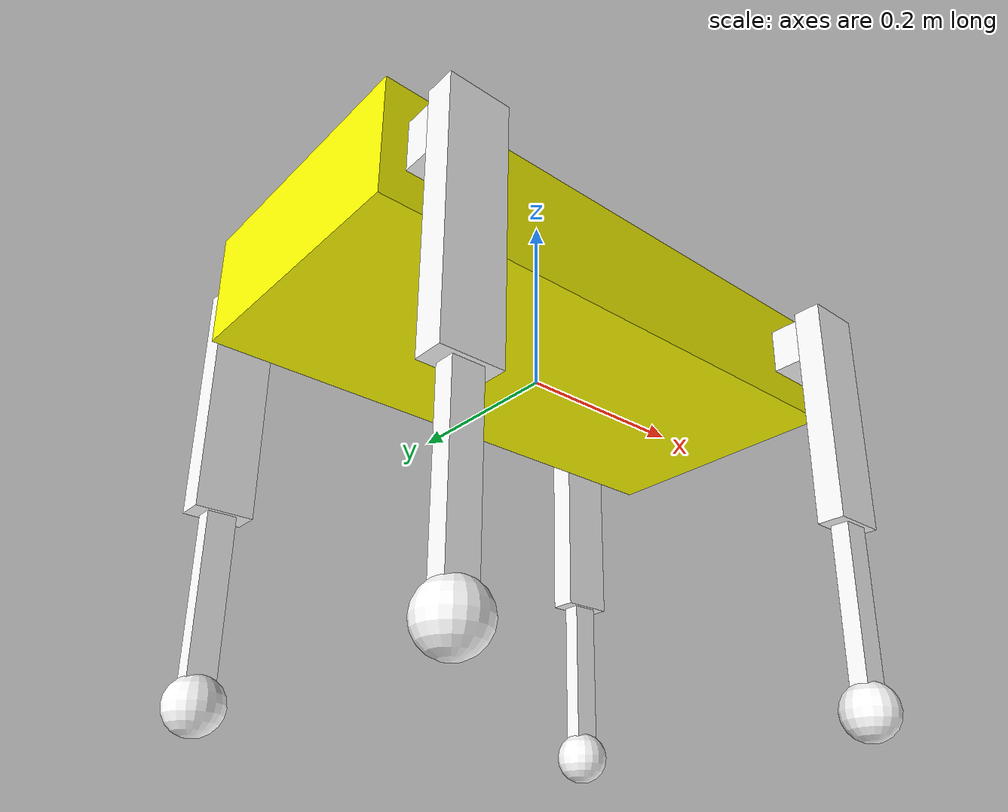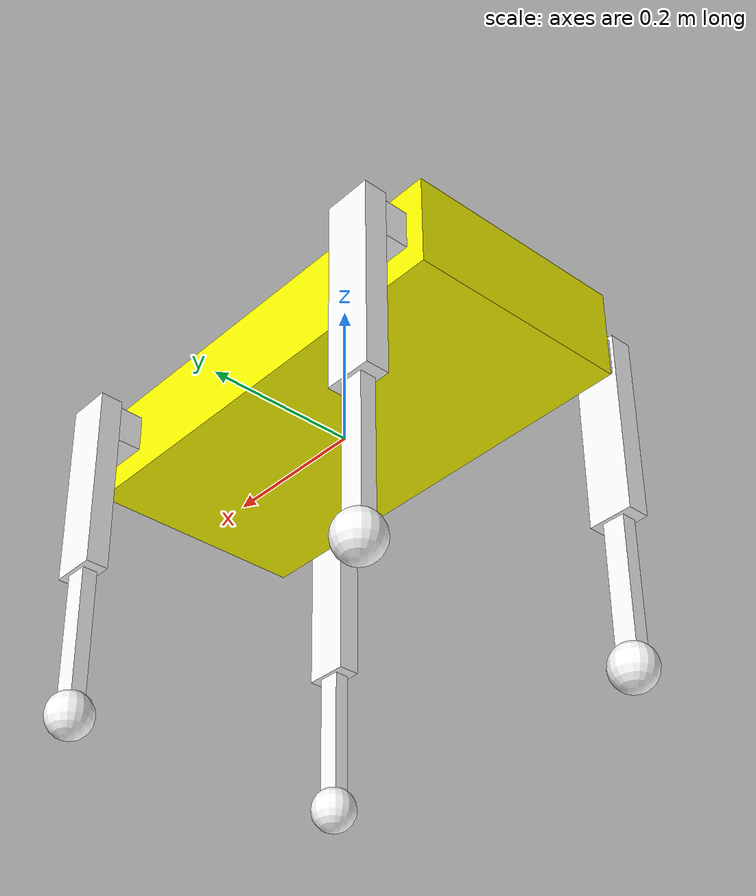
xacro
<?xml version="1.0" ?>
<robot name="legbot" xmlns:xacro="http://www.ros.org/wiki/xacro">
  <!-- include xacro files -->
  <xacro:include filename="$(find legbot_description)/urdf/legbot.gazebo.xacro"/>
  <xacro:include filename="$(find legbot_description)/urdf/legbot.ros2_control.xacro"/>
  <xacro:include filename="$(find legbot_description)/urdf/body/body.urdf.xacro"/>
  <xacro:include filename="$(find legbot_description)/urdf/leg/hip.urdf.xacro"/>
  <xacro:include filename="$(find legbot_description)/urdf/leg/upper_leg.urdf.xacro"/>
  <xacro:include filename="$(find legbot_description)/urdf/leg/lower_leg.urdf.xacro"/>
  <xacro:include filename="$(find legbot_description)/urdf/leg/foot.urdf.xacro"/>
  <xacro:include filename="$(find legbot_description)/urdf/sensors/lidar.urdf.xacro"/>

  <!-- arg -->
  <xacro:arg name="use_ignition" default="true"/>

  <!-- property -->
  <xacro:property name="use_ignition" value="$(arg use_ignition)"/>
  <xacro:property name="body_depth" value="0.6"/>
  <xacro:property name="body_width" value="0.3"/>
  <xacro:property name="body_height" value="0.12"/>
  <xacro:property name="body_mass" value="1"/>
  <xacro:property name="hip_depth" value="0.05"/>
  <xacro:property name="hip_width" value="0.1"/>
  <xacro:property name="hip_height" value="0.05"/>
  <xacro:property name="hip_mass" value="0.2"/>
  <xacro:property name="hip_shift_x" value="0.25"/>
  <xacro:property name="hip_shift_y" value="0.1"/>
  <xacro:property name="upper_leg_width" value="0.06"/>
  <xacro:property name="upper_leg_length" value="0.25"/>
  <xacro:property name="upper_leg_depth" value="0.03"/>
  <xacro:property name="upper_leg_mass" value="0.2"/>
  <xacro:property name="lower_leg_width" value="0.03"/>
  <xacro:property name="lower_leg_length" value="0.25"/>
  <xacro:property name="lower_leg_depth" value="0.02"/>
  <xacro:property name="lower_leg_mass" value="0.2"/>
  <xacro:property name="foot_radius" value="0.03"/>
  <xacro:property name="foot_mass" value="0.1"/>
  <xacro:property name="lidar_radius" value="0.04"/>
  <xacro:property name="lidar_length" value="0.04"/>
  <xacro:property name="lidar_mass" value="0.015"/>

  <!-- ======== Body Description ======== -->
  <xacro:body name="base_link" depth="${body_depth}" width="${body_width}" height="${body_height}" mass="${body_mass}"/>

  <!-- ======== Leg Description ======== -->
  <xacro:hip name="lf" parent="base_link"
             depth="${hip_depth}" width="${hip_width}" height="${hip_height}"
             mass="${hip_mass}" side="1" use_ignition="${use_ignition}">
    <origin xyz="${hip_shift_x} ${hip_shift_y} ${body_height/2}" rpy="0 0 0"/>
  </xacro:hip>
  <xacro:hip name="rf" parent="base_link"
             depth="${hip_depth}" width="${hip_width}" height="${hip_height}"
             mass="${hip_mass}" side="-1" use_ignition="${use_ignition}">
    <origin xyz="${hip_shift_x} ${-hip_shift_y} ${body_height/2}" rpy="0 0 0"/>
  </xacro:hip>
  <xacro:hip name="lb" parent="base_link"
             depth="${hip_depth}" width="${hip_width}" height="${hip_height}"
             mass="${hip_mass}" side="1" use_ignition="${use_ignition}">
    <origin xyz="${-hip_shift_x} ${hip_shift_y} ${body_height/2}" rpy="0 0 0"/>
  </xacro:hip>
  <xacro:hip name="rb" parent="base_link"
             depth="${hip_depth}" width="${hip_width}" height="${hip_height}"
             mass="${hip_mass}" side="-1" use_ignition="${use_ignition}">
    <origin xyz="${-hip_shift_x} ${-hip_shift_y} ${body_height/2}" rpy="0 0 0"/>
  </xacro:hip>

  <xacro:upper_leg name="lf"
                   width="${upper_leg_width}" length="${upper_leg_length}"
                   depth="${upper_leg_depth}" shift="${(upper_leg_width-upper_leg_length)/2}"
                   mass="${upper_leg_mass}" use_ignition="${use_ignition}">
    <origin xyz="0 ${hip_width} 0" rpy="0 0 0"/>
  </xacro:upper_leg>
  <xacro:upper_leg name="rf"
                   width="${upper_leg_width}" length="${upper_leg_length}"
                   depth="${upper_leg_depth}" shift="${(upper_leg_width-upper_leg_length)/2}"
                   mass="${upper_leg_mass}" use_ignition="${use_ignition}">
    <origin xyz="0 ${-hip_width} 0" rpy="0 0 0"/>
  </xacro:upper_leg>
  <xacro:upper_leg name="lb"
                   width="${upper_leg_width}" length="${upper_leg_length}"
                   depth="${upper_leg_depth}" shift="${(upper_leg_width-upper_leg_length)/2}"
                   mass="${upper_leg_mass}" use_ignition="${use_ignition}">
    <origin xyz="0 ${hip_width} 0" rpy="0 0 0"/>
  </xacro:upper_leg>
  <xacro:upper_leg name="rb"
                   width="${upper_leg_width}" length="${upper_leg_length}"
                   depth="${upper_leg_depth}" shift="${(upper_leg_width-upper_leg_length)/2}"
                   mass="${upper_leg_mass}" use_ignition="${use_ignition}">
    <origin xyz="0 ${-hip_width} 0" rpy="0 0 0"/>
  </xacro:upper_leg>

  <xacro:lower_leg name="lf"
                   width="${lower_leg_width}" length="${lower_leg_length}"
                   depth="${lower_leg_depth}" shift="${(lower_leg_width-lower_leg_length)/2}"
                   mass="${lower_leg_mass}" use_ignition="${use_ignition}">
    <origin xyz="0 0 ${upper_leg_width-upper_leg_length}" rpy="0 0 0"/>
  </xacro:lower_leg>
  <xacro:lower_leg name="rf"
                   width="${lower_leg_width}" length="${lower_leg_length}"
                   depth="${lower_leg_depth}" shift="${(lower_leg_width-lower_leg_length)/2}"
                   mass="${lower_leg_mass}" use_ignition="${use_ignition}">
    <origin xyz="0 0 ${upper_leg_width-upper_leg_length}" rpy="0 0 0"/>
  </xacro:lower_leg>
  <xacro:lower_leg name="lb"
                   width="${lower_leg_width}" length="${lower_leg_length}"
                   depth="${lower_leg_depth}" shift="${(lower_leg_width-lower_leg_length)/2}"
                   mass="${lower_leg_mass}" use_ignition="${use_ignition}">
    <origin xyz="0 0 ${upper_leg_width-upper_leg_length}" rpy="0 0 0"/>
  </xacro:lower_leg>
  <xacro:lower_leg name="rb"
                   width="${lower_leg_width}" length="${lower_leg_length}"
                   depth="${lower_leg_depth}" shift="${(lower_leg_width-lower_leg_length)/2}"
                   mass="${lower_leg_mass}" use_ignition="${use_ignition}">
    <origin xyz="0 0 ${upper_leg_width-upper_leg_length}" rpy="0 0 0"/>
  </xacro:lower_leg>

  <xacro:foot name="lf" radius="${foot_radius}" mass="${foot_mass}">
    <origin xyz="0 0 ${lower_leg_width-lower_leg_length}" rpy="0 0 0"/>
  </xacro:foot>
  <xacro:foot name="rf" radius="${foot_radius}" mass="${foot_mass}">
    <origin xyz="0 0 ${lower_leg_width-lower_leg_length}" rpy="0 0 0"/>
  </xacro:foot>
  <xacro:foot name="lb" radius="${foot_radius}" mass="${foot_mass}">
    <origin xyz="0 0 ${lower_leg_width-lower_leg_length}" rpy="0 0 0"/>
  </xacro:foot>
  <xacro:foot name="rb" radius="${foot_radius}" mass="${foot_mass}">
    <origin xyz="0 0 ${lower_leg_width-lower_leg_length}" rpy="0 0 0"/>
  </xacro:foot>

  <!-- ======== Sensors Description ======== -->
  <xacro:lidar name="laser" parent="base_link" radius="${lidar_radius}"
               length="${lidar_length}" mass="${lidar_mass}" use_ignition="${use_ignition}">
    <origin xyz="0 0 ${body_height+lidar_length/2}" rpy="0 0 0"/>
  </xacro:lidar>

  <!-- ======== Gazebo ======== -->
  <xacro:if value="${use_ignition}">
    <xacro:legbot_gazebo />
  </xacro:if>

  <!-- ======== ros2_control ======== -->
  <xacro:legbot_ros2_control use_ignition="${use_ignition}"/>
</robot>

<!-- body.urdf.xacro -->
<robot name="body" xmlns:xacro="http://www.ros.org/wiki/xacro">
  <xacro:include filename="$(find legbot_description)/urdf/color.urdf.xacro"/>

  <xacro:macro name="body" params="name depth width height mass">

    <link name="${name}">
      <inertial>
        <origin xyz="0 0 ${height/2}" rpy="0 0 0"/>
        <mass value="${mass}" />
        <inertia ixx="${mass/12*(width*width+height*height)}" ixy="0" ixz="0"
                 iyx="0" iyy="${mass/12*(depth*depth+height*height)}" iyz="0"
                 izx="0" izy="0" izz="${mass/12*(depth*depth+width*width)}"/>
      </inertial>
      <visual>
        <origin xyz="0 0 ${height/2}" rpy="0 0 0"/>
        <geometry>
          <box size="${depth} ${width} ${height}"/>
        </geometry>
        <material name="body_color">
          <color rgba="1.0 1.0 0.0 1.0"/>
        </material>
      </visual>
      <collision>
        <origin xyz="0 0 ${height/2}" rpy="0 0 0"/>
        <geometry>
          <box size="${depth} ${width} ${height}"/>
        </geometry>
      </collision>
    </link>

    <gazebo reference="${name}">
      <xacro:material_gazebo_yellow/>
      <mu1 value="0.8"/>
      <mu2 value="0.8"/>
      <kp value="10000000.0"/>
      <kd value="1.0"/>
      <fdir1 value="0 1 0"/>
    </gazebo>
  </xacro:macro>
</robot>

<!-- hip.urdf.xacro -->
<robot name="hip" xmlns:xacro="http://www.ros.org/wiki/xacro">
  <xacro:include filename="$(find legbot_description)/urdf/leg/hip.gazebo.xacro" />
  <xacro:include filename="$(find legbot_description)/urdf/leg/hip.ros2_control.xacro" />

  <xacro:macro name="hip_origin">
    <xacro:if value="${side==1}">
      <origin xyz="0 ${width/2} 0" rpy="0 0 0"/>
    </xacro:if>
    <xacro:if value="${side==-1}">
      <origin xyz="0 ${-width/2} 0" rpy="0 0 0"/>
    </xacro:if>
  </xacro:macro>

  <xacro:macro name="hip" params="name parent depth width height mass side use_ignition *origin">
    <material name="${name}_hip_color">
      <color rgba="1.0 1.0 1.0 1.0"/>
    </material>

    <link name="${name}_hip">
      <inertial>
        <xacro:hip_origin/>
        <mass value="${mass}" />
        <inertia ixx="${mass/12*(width*width+height*height)}" ixy="0" ixz="0"
                 iyx="0" iyy="${mass/12*(depth*depth+height*height)}" iyz="0"
                 izx="0" izy="0" izz="${mass/12*(depth*depth+width*width)}"/>
      </inertial>
      <visual>
        <xacro:hip_origin/>
        <geometry>
          <box size="${depth} ${width} ${height}"/>
        </geometry>
        <material name="${name}_hip_color"/>
      </visual>
      <collision>
        <xacro:hip_origin/>
        <geometry>
          <box size="${depth} ${width} ${height}"/>
        </geometry>
      </collision>
    </link>

    <joint name="${name}_body_to_hip_joint" type="revolute">
      <limit effort="25" lower="${-pi/2}" upper="${pi/2}" velocity="1.5"/>
      <xacro:insert_block name="origin"/>
      <parent link="${parent}"/>
      <child link="${name}_hip"/>
      <axis xyz="1.0 0.0 0.0"/>
    </joint>

    <!-- Gazebo Plugin -->
    <xacro:hip_gazebo name="${name}"/>

    <!-- ros2_control Plugin -->
    <xacro:hip_ros2_control name="${name}" use_ignition="${use_ignition}"/>
  </xacro:macro>
</robot>

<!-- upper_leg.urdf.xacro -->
<robot name="upper_leg" xmlns:xacro="http://www.ros.org/wiki/xacro">
  <xacro:include filename="$(find legbot_description)/urdf/leg/upper_leg.gazebo.xacro" />
  <xacro:include filename="$(find legbot_description)/urdf/leg/upper_leg.ros2_control.xacro" />

  <xacro:macro name="upper_leg" params="name width length depth shift mass use_ignition *origin">
    <material name="${name}_upper_leg_color">
      <color rgba="1.0 1.0 1.0 1.0"/>
    </material>

    <link name="${name}_upper_leg">
      <inertial>
        <origin xyz="0 0 ${shift}" rpy="0 0 0"/>
        <mass value="${mass}" />
        <inertia ixx="${mass/12*(depth*depth+length*length)}" ixy="0" ixz="0"
                 iyx="0" iyy="${mass/12*(width*width+length*length)}" iyz="0"
                 izx="0" izy="0" izz="${mass/12*(width*width+depth*depth)}"/>
      </inertial>
      <visual>
        <origin xyz="0 0 ${shift}" rpy="0 0 0"/>
        <geometry>
          <box size="${width} ${depth} ${length}"/>
        </geometry>
        <material name="${name}_upper_leg_color"/>
      </visual>
      <collision>
        <origin xyz="0 0 ${shift}" rpy="0 0 0"/>
        <geometry>
          <box size="${width} ${depth} ${length}"/>
        </geometry>
      </collision>
    </link>

    <joint name="${name}_hip_to_upper_leg_joint" type="revolute">
      <limit effort="25" lower="${-pi/2}" upper="${pi/2}" velocity="1.5"/>
      <xacro:insert_block name="origin"/>
      <parent link="${name}_hip"/>
      <child link="${name}_upper_leg"/>
      <axis xyz="0.0 1.0 0.0"/>
    </joint>

    <!-- Gazebo Plugin -->
    <xacro:upper_leg_gazebo name="${name}"/>

    <!-- ros2_control Plugin -->
    <xacro:upper_leg_ros2_control name="${name}" use_ignition="${use_ignition}"/>
  </xacro:macro>
</robot>

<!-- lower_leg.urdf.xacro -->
<robot name="lower_leg" xmlns:xacro="http://www.ros.org/wiki/xacro">
  <xacro:include filename="$(find legbot_description)/urdf/leg/lower_leg.gazebo.xacro" />
  <xacro:include filename="$(find legbot_description)/urdf/leg/lower_leg.ros2_control.xacro" />

  <xacro:macro name="lower_leg" params="name width length depth shift mass use_ignition *origin">
    <material name="${name}_lower_leg_color">
      <color rgba="1.0 1.0 1.0 1.0"/>
    </material>

    <link name="${name}_lower_leg">
      <inertial>
        <origin xyz="0 0 ${shift}" rpy="0 0 0"/>
        <mass value="${mass}" />
        <inertia ixx="${mass/12*(depth*depth+length*length)}" ixy="0" ixz="0"
                 iyx="0" iyy="${mass/12*(width*width+length*length)}" iyz="0"
                 izx="0" izy="0" izz="${mass/12*(width*width+depth*depth)}"/>
      </inertial>
      <visual>
        <origin xyz="0 0 ${shift}" rpy="0 0 0"/>
        <geometry>
          <box size="${width} ${depth} ${length}"/>
        </geometry>
        <material name="${name}_lower_leg_color"/>
      </visual>
      <collision>
        <origin xyz="0 0 ${shift}" rpy="0 0 0"/>
        <geometry>
          <box size="${width} ${depth} ${length}"/>
        </geometry>
      </collision>
    </link>

    <joint name="${name}_upper_leg_to_lower_leg_joint" type="revolute">
      <limit effort="25" lower="${-pi/2}" upper="${pi/2}" velocity="1.5"/>
      <xacro:insert_block name="origin"/>
      <parent link="${name}_upper_leg"/>
      <child link="${name}_lower_leg"/>
      <axis xyz="0.0 1.0 0.0"/>
    </joint>

    <!-- Gazebo Plugin -->
    <xacro:lower_leg_gazebo name="${name}"/>

    <!-- ros2_control Plugin -->
    <xacro:lower_leg_ros2_control name="${name}" use_ignition="${use_ignition}"/>
  </xacro:macro>
</robot>

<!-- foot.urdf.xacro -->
<robot name="foot" xmlns:xacro="http://www.ros.org/wiki/xacro">
  <xacro:include filename="$(find legbot_description)/urdf/leg/foot.gazebo.xacro" />

  <xacro:macro name="foot" params="name radius mass *origin">
    <material name="${name}_foot_color">
      <color rgba="1.0 1.0 1.0 1.0"/>
    </material>

    <link name="${name}_foot">
      <inertial>
        <origin xyz="0 0 0" rpy="0 0 0"/>
        <mass value="${mass}" />
        <inertia ixx="${2/5*mass*radius*radius}" ixy="0" ixz="0"
                 iyx="0" iyy="${2/5*mass*radius*radius}" iyz="0"
                 izx="0" izy="0" izz="${2/5*mass*radius*radius}"/>
      </inertial>
      <visual>
        <origin xyz="0 0 0" rpy="0 0 0"/>
        <geometry>
          <sphere radius="${radius}"/>
        </geometry>
        <material name="${name}_foot_color"/>
      </visual>
      <collision>
        <origin xyz="0 0 0" rpy="0 0 0"/>
        <geometry>
          <sphere radius="${radius}"/>
        </geometry>
      </collision>
    </link>

    <joint name="${name}_lower_leg_to_foot_joint" type="fixed">
      <xacro:insert_block name="origin"/>
      <parent link="${name}_lower_leg"/>
      <child link="${name}_foot"/>
      <axis xyz="0.0 0.0 1.0"/>
    </joint>

    <!-- Gazebo Plugin -->
    <xacro:foot_gazebo name="${name}"/>
  </xacro:macro>
</robot>

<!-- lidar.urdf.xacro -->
<robot name="lidar" xmlns:xacro="http://www.ros.org/wiki/xacro">
  <xacro:include filename="$(find legbot_description)/urdf/sensors/lidar.gazebo.xacro"/>

  <xacro:macro name="lidar" params="name:=laser parent radius length mass use_ignition *origin">
    <material name="${name}_color">
      <color rgba="0.70196 0.70196 0.70196 1.0"/>
    </material>

    <link name="${name}">
      <inertial>
        <origin xyz="0 0 0" rpy="0 0 0"/>
        <mass value="${mass}"/>
        <inertia ixx="${mass/12*(3*radius*radius+length*length)}" ixy="0" ixz="0"
                 iyx="0" iyy="${mass/12*(3*radius*radius+length*length)}" iyz="0.0"
                 izx="0" izy="0" izz="${mass/2*radius*radius}"/>
      </inertial>
      <visual>
        <origin xyz="0 0 0" rpy="0 0 0"/>
        <geometry>
          <cylinder radius="${radius}" length="${length}"/>
        </geometry>
        <material name="${name}_color"/>
      </visual>
      <collision>
        <origin xyz="0 0 0" rpy="0 0 0"/>
        <geometry>
          <cylinder  radius="${radius}" length="${length}"/>
        </geometry>
      </collision>
    </link>

    <joint name="${name}_joint" type="fixed">
      <xacro:insert_block name="origin"/>
      <parent link="${parent}"/>
      <child link="${name}"/>
    </joint>

    <!-- Gazebo Plugin -->
    <xacro:lidar_gazebo name="${name}" use_ignition="${use_ignition}"/>

  </xacro:macro>
</robot>
